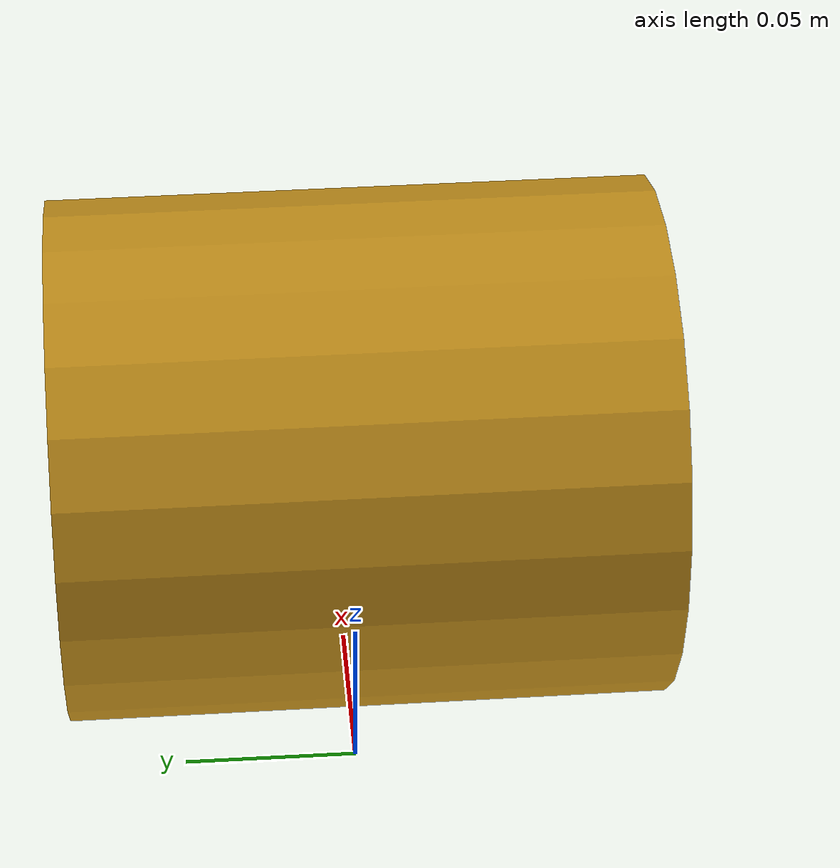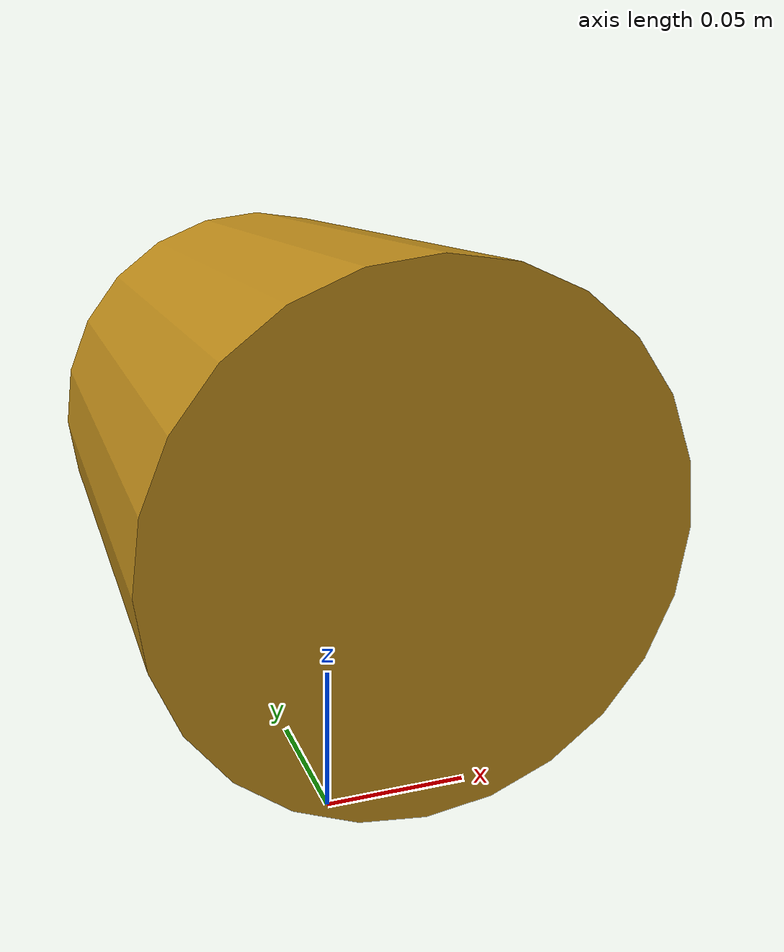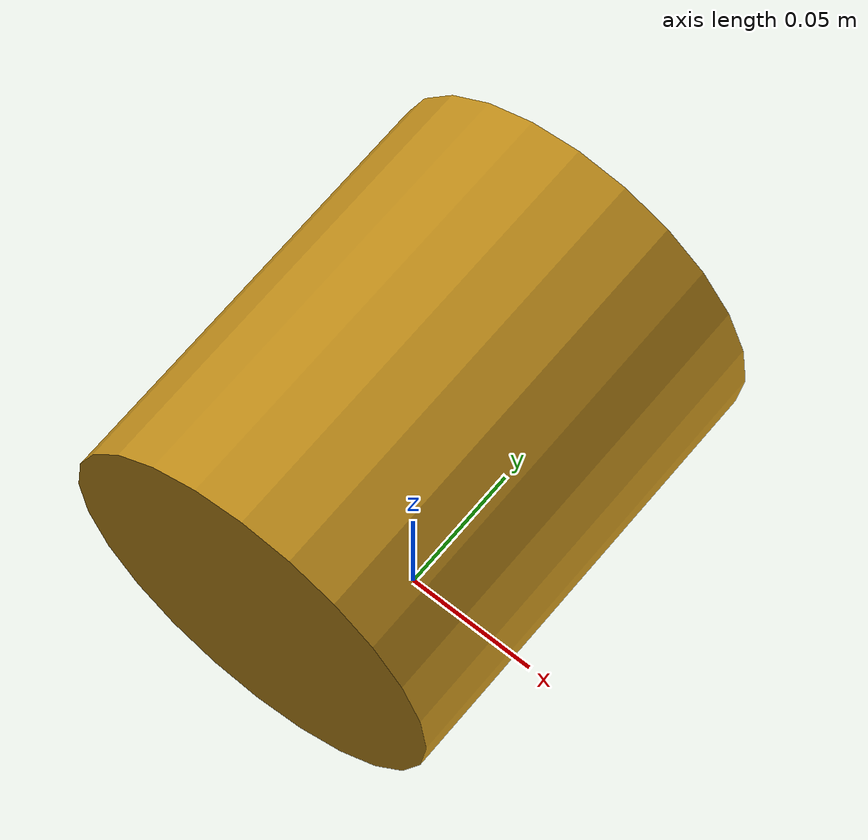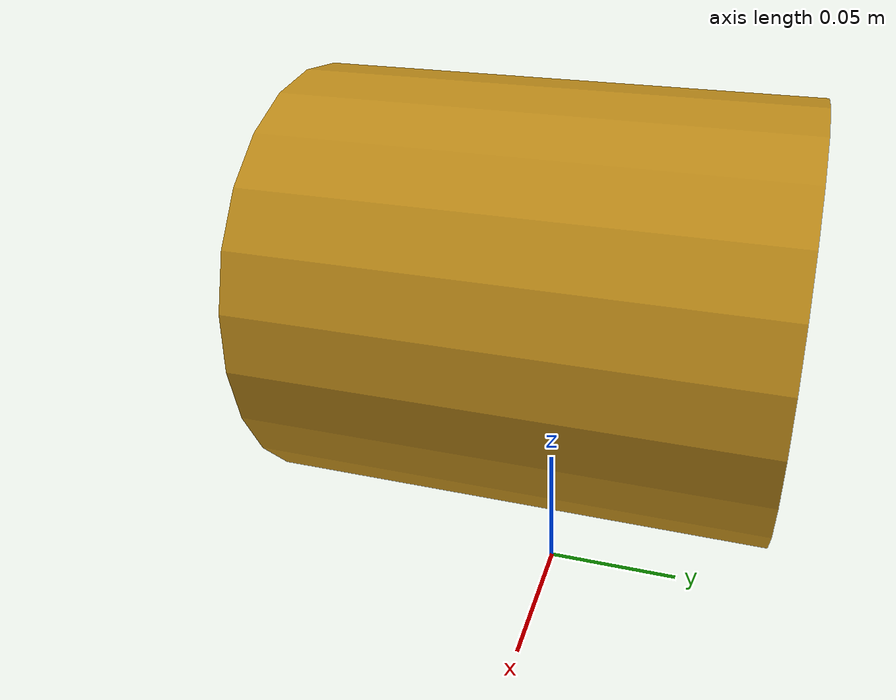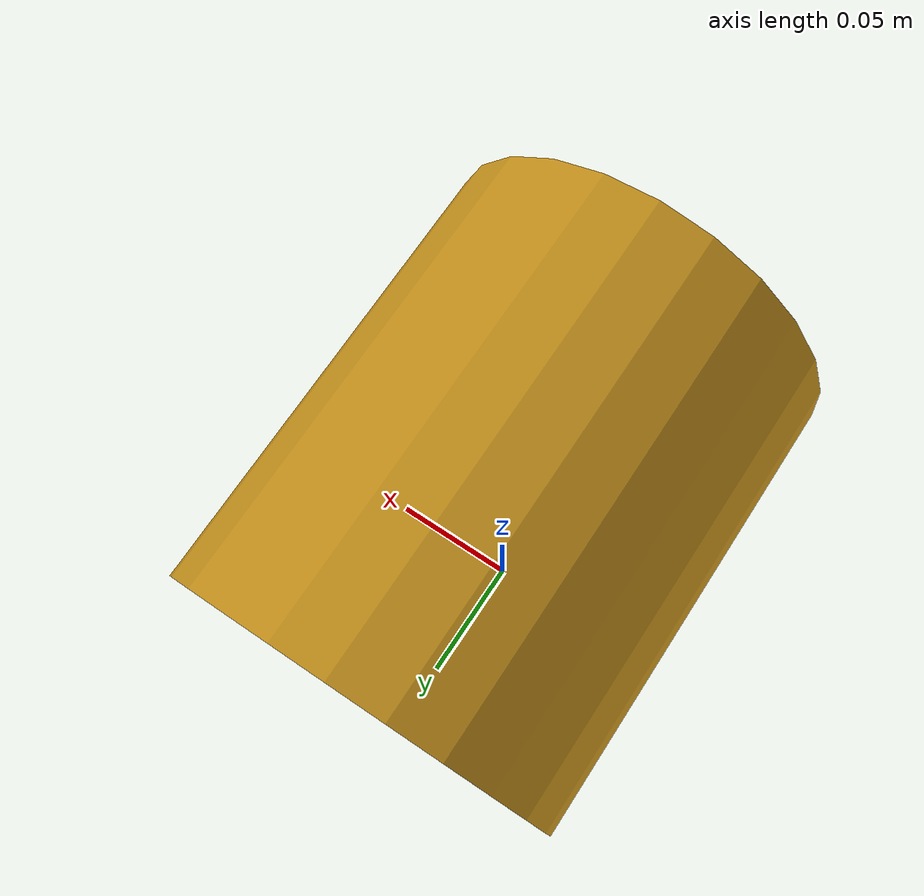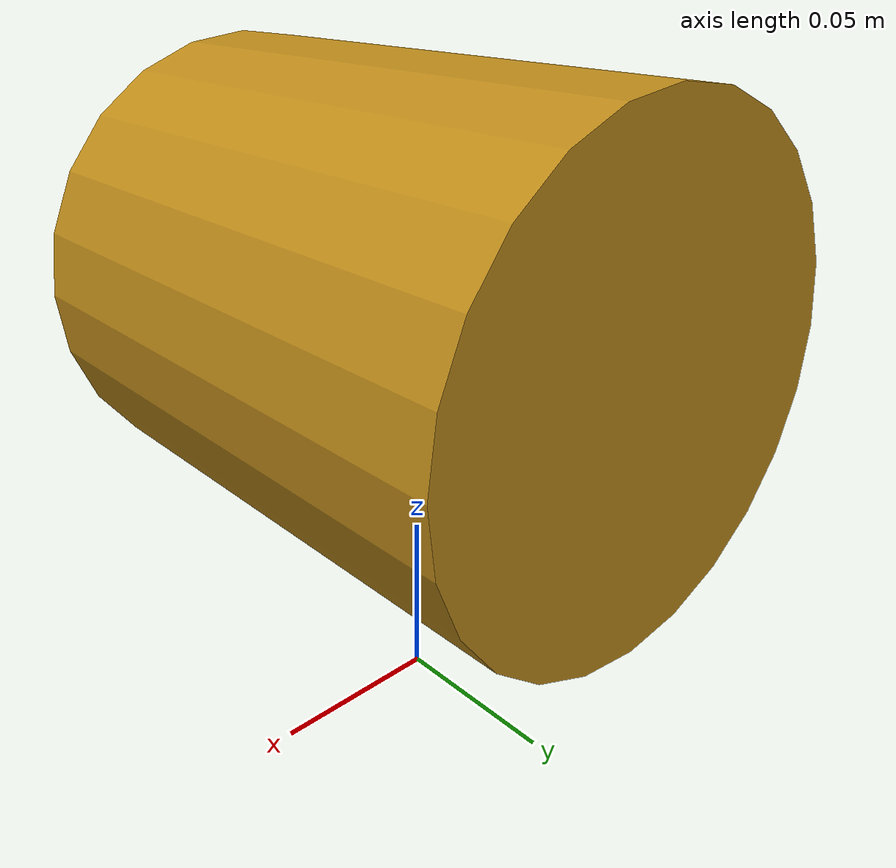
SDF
<?xml version="1.0" ?>
<sdf version="1.9">
  <world name="reel_bench">
    <physics name="default" type="ode">
      <max_step_size>0.004</max_step_size>
      <real_time_factor>1.0</real_time_factor>
    </physics>
    <plugin filename="gz-sim-physics-system" name="gz::sim::systems::Physics"/>
    <plugin filename="gz-sim-user-commands-system" name="gz::sim::systems::UserCommands"/>
    <plugin filename="gz-sim-scene-broadcaster-system" name="gz::sim::systems::SceneBroadcaster"/>

    <gravity>0 0 -9.8</gravity>

    <model name="reel_bench">
      <static>false</static>
      <link name="ground_station_base">
        <pose>0 0 0 0 0 0</pose>
        <inertial>
          <mass>1.0</mass>
          <inertia>
            <ixx>1</ixx><ixy>0</ixy><ixz>0</ixz>
            <iyy>1</iyy><iyz>0</iyz><izz>1</izz>
          </inertia>
        </inertial>
      </link>
      <joint name="ground_station_world_fixed" type="fixed">
        <parent>world</parent>
        <child>ground_station_base</child>
      </joint>
    <link name="reel_link">
          <pose relative_to="ground_station_base">0 0 0.12 0 0 0</pose>
          <inertial>
            <mass>0.2</mass>
            <inertia>
              <ixx>0.000671666667</ixx>
              <ixy>0</ixy>
              <ixz>0</ixz>
              <iyy>0.00049</iyy>
              <iyz>0</iyz>
              <izz>0.000671666667</izz>
            </inertia>
          </inertial>
          <visual name="reel_link_visual">
            <pose>0 0 0 1.57079632679 0 0</pose>
            <geometry>
              <cylinder>
                <radius>0.07</radius>
                <length>0.16</length>
              </cylinder>
            </geometry>
            <material>
              <diffuse>0.75 0.55 0.10 1.0</diffuse>
              <ambient>0.75 0.55 0.10 1.0</ambient>
            </material>
          </visual>
        </link>
    <joint name="reel_joint" type="revolute">
          <pose relative_to="reel_link">0 0 0 0 0 0</pose>
          <parent>ground_station_base</parent>
          <child>reel_link</child>
          <axis>
            <xyz>0 1 0</xyz>
            <limit>
              <lower>-1e16</lower>
              <upper>1e16</upper>
            </limit>
            <dynamics>
              <damping>0.005</damping>
              <friction>0</friction>
            </dynamics>
          </axis>
        </joint>
      <plugin filename="libReelTorqueBench.so" name="drone_cabo::ReelTorqueBench">
        <reel_model>reel_bench</reel_model>
        <reel_link>reel_link</reel_link>
        <reel_joint>reel_joint</reel_joint>
        <lever_arm>0.07</lever_arm>
        <body_force_x>0</body_force_x>
        <probe_transmitted_wrench>false</probe_transmitted_wrench>
      </plugin>
      <plugin filename="libReelActuator.so" name="drone_cabo::ReelActuator">
        <reel_model>reel_bench</reel_model>
        <reel_joint>reel_joint</reel_joint>
        <tau_max>0.05</tau_max>
        <omega_max>12</omega_max>
        <ramp_rate>0.05</ramp_rate>
        <command_topic>/cabo/tms/reel_cmd</command_topic>
      </plugin>
    </model>
  </world>
</sdf>
